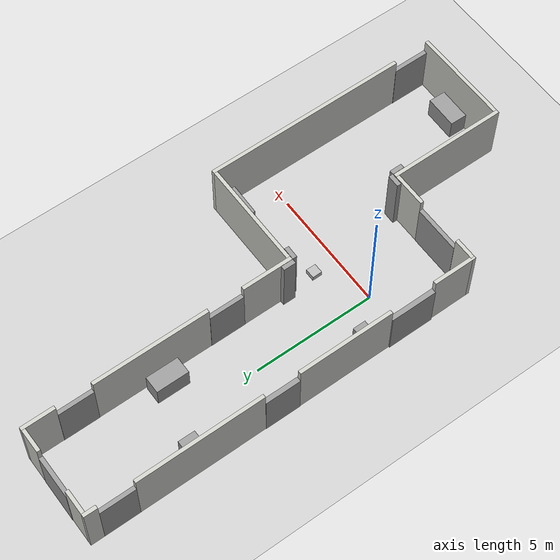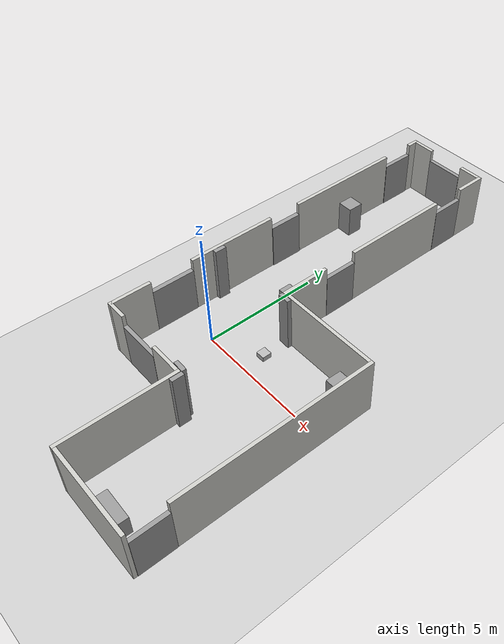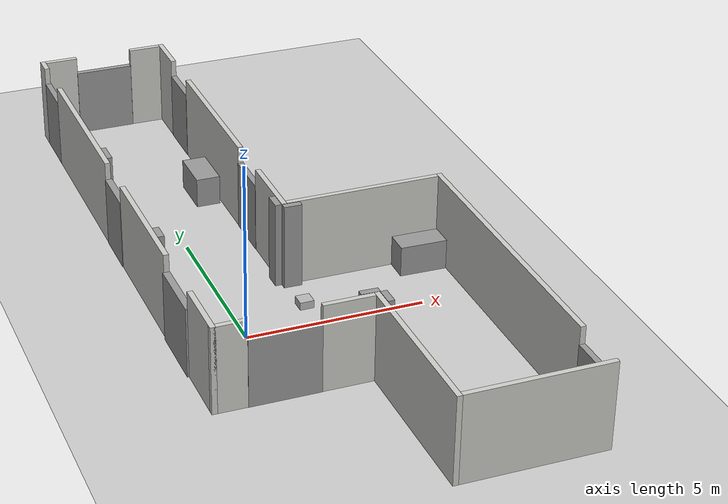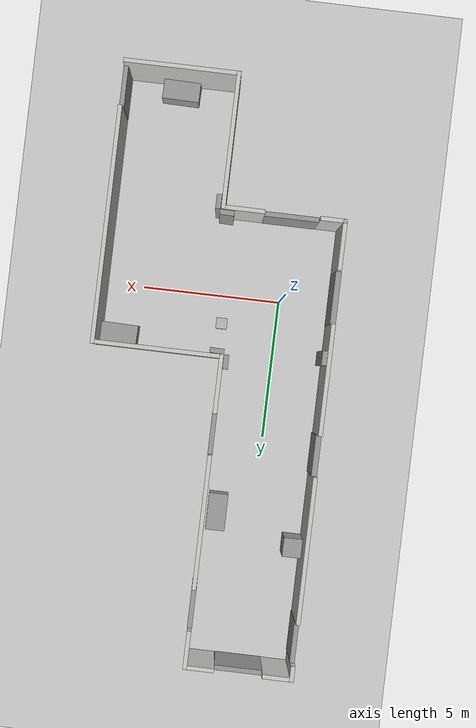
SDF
<sdf version="1.7">
 <world name="default">
  <light name="sun" type="directional">
   <pose>0 0 10 0 -0 0</pose>
   <diffuse>0.8 0.8 0.8 1</diffuse>
   <specular>0.2 0.2 0.2 1</specular>
   <attenuation>
    <range>1000</range>
    <constant>0.9</constant>
    <linear>0.01</linear>
    <quadratic>0.001</quadratic>
   </attenuation>
   <direction>-0.5 0.1 -0.9</direction>
   <spot><inner_angle>0</inner_angle><outer_angle>0</outer_angle><falloff>0</falloff></spot>
  </light>
  <model name="ground_plane">
   <static>1</static>
   <link name="link">
    <collision name="collision">
     <geometry><plane><normal>0 0 1</normal><size>100 100</size></plane></geometry>
     <surface>
      <contact><collide_bitmask>65535</collide_bitmask></contact>
      <friction><ode><mu>100</mu><mu2>50</mu2></ode></friction>
     </surface>
    </collision>
    <visual name="visual">
     <cast_shadows>0</cast_shadows>
     <geometry><plane><normal>0 0 1</normal><size>100 100</size></plane></geometry>
     <material>
      <script><uri>file://media/materials/scripts/gazebo.material</uri><name>Gazebo/Grey</name></script>
     </material>
    </visual>
   </link>
  </model>
  <gravity>0 0 -9.8</gravity>
  <magnetic_field>6e-06 2.3e-05 -4.2e-05</magnetic_field>
  <atmosphere type="adiabatic"/>
  <physics type="ode">
   <max_step_size>0.001</max_step_size>
   <real_time_factor>1</real_time_factor>
   <real_time_update_rate>1000</real_time_update_rate>
  </physics>
  <scene><ambient>0.4 0.4 0.4 1</ambient><background>0.7 0.7 0.7 1</background><shadows>1</shadows></scene>
  <spherical_coordinates>
   <surface_model>EARTH_WGS84</surface_model>
   <latitude_deg>0</latitude_deg>
   <longitude_deg>0</longitude_deg>
   <elevation>0</elevation>
   <heading_deg>0</heading_deg>
  </spherical_coordinates>
  <model name="pasillo_cextension">
   <pose>2.25605 2.7639 0 0 -0 0</pose>
   <link name="Door_1">
    <collision name="Door_1_Collision">
     <geometry><box><size>1.95 0.17 2</size></box></geometry>
     <pose>0 0 1 0 -0 0</pose>
    </collision>
    <visual name="Door_1_Visual">
     <pose>0 0 1 0 -0 0</pose>
     <geometry><box><size>1.95 0.17 2</size></box></geometry>
     <material>
      <script><uri>file://media/materials/scripts/gazebo.material</uri><name>Gazebo/Grey</name></script>
     </material>
    </visual>
    <pose>-2.295 -5.725 0 0 -0 0</pose>
   </link>
   <link name="Door_2">
    <collision name="Door_2_Collision">
     <geometry><box><size>1.9 0.2 2</size></box></geometry>
     <pose>0 0 1 0 -0 0</pose>
    </collision>
    <visual name="Door_2_Visual">
     <pose>0 0 1 0 -0 0</pose>
     <geometry><box><size>1.9 0.2 2</size></box></geometry>
     <material>
      <script><uri>file://media/materials/scripts/gazebo.material</uri><name>Gazebo/Grey</name></script>
     </material>
    </visual>
    <pose>-4.17 -3.055 0 0 -0 -1.57019</pose>
   </link>
   <link name="Door_3">
    <collision name="Door_3_Collision">
     <geometry><box><size>1.45 0.2 2</size></box></geometry>
     <pose>0 0 1 0 -0 0</pose>
    </collision>
    <visual name="Door_3_Visual">
     <pose>0 0 1 0 -0 0</pose>
     <geometry><box><size>1.45 0.2 2</size></box></geometry>
     <material>
      <script><uri>file://media/materials/scripts/gazebo.material</uri><name>Gazebo/Grey</name></script>
     </material>
    </visual>
    <pose>-4.145 2.575 0 0 -0 -1.57264</pose>
   </link>
   <link name="Door_4">
    <collision name="Door_4_Collision">
     <geometry><box><size>1.45 0.17 2</size></box></geometry>
     <pose>0 0 1 0 -0 0</pose>
    </collision>
    <visual name="Door_4_Visual">
     <pose>0 0 1 0 -0 0</pose>
     <geometry><box><size>1.45 0.17 2</size></box></geometry>
     <material>
      <script><uri>file://media/materials/scripts/gazebo.material</uri><name>Gazebo/Grey</name></script>
     </material>
    </visual>
    <pose>-4.145 9.225 0 0 -0 -1.57163</pose>
   </link>
   <link name="Door_5">
    <collision name="Door_5_Collision">
     <geometry><box><size>1.7 0.17 2</size></box></geometry>
     <pose>0 0 1 0 -0 0</pose>
    </collision>
    <visual name="Door_5_Visual">
     <pose>0 0 1 0 -0 0</pose>
     <geometry><box><size>1.7 0.17 2</size></box></geometry>
     <material>
      <script><uri>file://media/materials/scripts/gazebo.material</uri><name>Gazebo/Grey</name></script>
     </material>
    </visual>
    <pose>-2.275 10.425 0 0 -0 3.14085</pose>
   </link>
   <link name="Door_6">
    <collision name="Door_6_Collision">
     <geometry><box><size>1.45 0.17 2</size></box></geometry>
     <pose>0 0 1 0 -0 0</pose>
    </collision>
    <visual name="Door_6_Visual">
     <pose>0 0 1 0 -0 0</pose>
     <geometry><box><size>1.45 0.17 2</size></box></geometry>
     <material>
      <script><uri>file://media/materials/scripts/gazebo.material</uri><name>Gazebo/Grey</name></script>
     </material>
    </visual>
    <pose>-0.395 8.425 0 0 -0 1.57077</pose>
   </link>
   <link name="Door_7">
    <collision name="Door_7_Collision">
     <geometry><box><size>1.45 0.17 2</size></box></geometry>
     <pose>0 0 1 0 -0 0</pose>
    </collision>
    <visual name="Door_7_Visual">
     <pose>0 0 1 0 -0 0</pose>
     <geometry><box><size>1.45 0.17 2</size></box></geometry>
     <material>
      <script><uri>file://media/materials/scripts/gazebo.material</uri><name>Gazebo/Grey</name></script>
     </material>
    </visual>
    <pose>-0.395 2.225 0 0 -0 1.5708</pose>
   </link>
   <link name="Door_8">
    <collision name="Door_8_Collision">
     <geometry><box><size>1.5 0.17 2</size></box></geometry>
     <pose>0 0 1 0 -0 0</pose>
    </collision>
    <visual name="Door_8_Visual">
     <pose>0 0 1 0 -0 0</pose>
     <geometry><box><size>1.5 0.17 2</size></box></geometry>
     <material>
      <script><uri>file://media/materials/scripts/gazebo.material</uri><name>Gazebo/Grey</name></script>
     </material>
    </visual>
    <pose>4.155 -9.595 0 0 -0 1.57287</pose>
   </link>
   <link name="Wall_12">
    <collision name="Wall_12_Collision">
     <geometry><box><size>0.55 0.15 2.5</size></box></geometry>
     <pose>0 0 1.25 0 -0 0</pose>
    </collision>
    <visual name="Wall_12_Visual">
     <pose>0 0 1.25 0 -0 0</pose>
     <geometry><box><size>0.55 0.15 2.5</size></box></geometry>
     <material>
      <script><uri>file://media/materials/scripts/gazebo.material</uri><name>Gazebo/CeilingTiled</name></script>
      <ambient>1 1 1 1</ambient>
     </material>
     <meta><layer>0</layer></meta>
    </visual>
    <pose>-4.155 10.225 0 0 -0 1.5708</pose>
   </link>
   <link name="Wall_14">
    <collision name="Wall_14_Collision">
     <geometry><box><size>0.97 0.15 2.5</size></box></geometry>
     <pose>0 0 1.25 0 -0 0</pose>
    </collision>
    <visual name="Wall_14_Visual">
     <pose>0 0 1.25 0 -0 0</pose>
     <geometry><box><size>0.97 0.15 2.5</size></box></geometry>
     <material>
      <script><uri>file://media/materials/scripts/gazebo.material</uri><name>Gazebo/CeilingTiled</name></script>
      <ambient>1 1 1 1</ambient>
     </material>
     <meta><layer>0</layer></meta>
    </visual>
    <pose>-3.605 10.425 0 0 -0 0</pose>
   </link>
   <link name="Wall_16">
    <collision name="Wall_16_Collision">
     <geometry><box><size>0.95 0.15 2.5</size></box></geometry>
     <pose>0 0 1.25 0 -0 0</pose>
    </collision>
    <visual name="Wall_16_Visual">
     <pose>0 0 1.25 0 -0 0</pose>
     <geometry><box><size>0.95 0.15 2.5</size></box></geometry>
     <material>
      <script><uri>file://media/materials/scripts/gazebo.material</uri><name>Gazebo/CeilingTiled</name></script>
      <ambient>1 1 1 1</ambient>
     </material>
     <meta><layer>0</layer></meta>
    </visual>
    <pose>-0.945 10.425 0 0 -0 0</pose>
   </link>
   <link name="Wall_18">
    <collision name="Wall_18_Collision">
     <geometry><box><size>1.35 0.15 2.5</size></box></geometry>
     <pose>0 0 1.25 0 -0 0</pose>
    </collision>
    <visual name="Wall_18_Visual">
     <pose>0 0 1.25 0 -0 0</pose>
     <geometry><box><size>1.35 0.15 2.5</size></box></geometry>
     <material>
      <script><uri>file://media/materials/scripts/gazebo.material</uri><name>Gazebo/CeilingTiled</name></script>
      <ambient>1 1 1 1</ambient>
     </material>
     <meta><layer>0</layer></meta>
    </visual>
    <pose>-0.395 9.825 0 0 -0 -1.5708</pose>
   </link>
   <link name="Wall_20">
    <collision name="Wall_20_Collision">
     <geometry><box><size>4.75 0.15 2.5</size></box></geometry>
     <pose>0 0 1.25 0 -0 0</pose>
    </collision>
    <visual name="Wall_20_Visual">
     <pose>0 0 1.25 0 -0 0</pose>
     <geometry><box><size>4.75 0.15 2.5</size></box></geometry>
     <material>
      <script><uri>file://media/materials/scripts/gazebo.material</uri><name>Gazebo/CeilingTiled</name></script>
      <ambient>1 1 1 1</ambient>
     </material>
     <meta><layer>0</layer></meta>
    </visual>
    <pose>-0.395 5.325 0 0 -0 -1.5708</pose>
   </link>
   <link name="Wall_22">
    <collision name="Wall_22_Collision">
     <geometry><box><size>2.1 0.15 2.5</size></box></geometry>
     <pose>0 0 1.25 0 -0 0</pose>
    </collision>
    <visual name="Wall_22_Visual">
     <pose>0 0 1.25 0 -0 0</pose>
     <geometry><box><size>2.1 0.15 2.5</size></box></geometry>
     <material>
      <script><uri>file://media/materials/scripts/gazebo.material</uri><name>Gazebo/CeilingTiled</name></script>
      <ambient>1 1 1 1</ambient>
     </material>
     <meta><layer>0</layer></meta>
    </visual>
    <pose>-0.395 0.45 0 0 -0 -1.5708</pose>
   </link>
   <link name="Wall_24">
    <collision name="Wall_24_Collision">
     <geometry><box><size>4.4 0.15 2.5</size></box></geometry>
     <pose>0 0 1.25 0 -0 0</pose>
    </collision>
    <visual name="Wall_24_Visual">
     <pose>0 0 1.25 0 -0 0</pose>
     <geometry><box><size>4.4 0.15 2.5</size></box></geometry>
     <material>
      <script><uri>file://media/materials/scripts/gazebo.material</uri><name>Gazebo/CeilingTiled</name></script>
      <ambient>1 1 1 1</ambient>
     </material>
     <meta><layer>0</layer></meta>
    </visual>
    <pose>1.88 -0.525 0 0 -0 0</pose>
   </link>
   <link name="Wall_26">
    <collision name="Wall_26_Collision">
     <geometry><box><size>8.4 0.15 2.5</size></box></geometry>
     <pose>0 0 1.25 0 -0 0</pose>
    </collision>
    <visual name="Wall_26_Visual">
     <pose>0 0 1.25 0 -0 0</pose>
     <geometry><box><size>8.4 0.15 2.5</size></box></geometry>
     <material>
      <script><uri>file://media/materials/scripts/gazebo.material</uri><name>Gazebo/CeilingTiled</name></script>
      <ambient>1 1 1 1</ambient>
     </material>
     <meta><layer>0</layer></meta>
    </visual>
    <pose>4.155 -4.65 0 0 -0 -1.5708</pose>
   </link>
   <link name="Wall_28">
    <collision name="Wall_28_Collision">
     <geometry><box><size>4 0.15 2.5</size></box></geometry>
     <pose>0 0 1.25 0 -0 0</pose>
    </collision>
    <visual name="Wall_28_Visual">
     <pose>0 0 1.25 0 -0 0</pose>
     <geometry><box><size>4 0.15 2.5</size></box></geometry>
     <material>
      <script><uri>file://media/materials/scripts/gazebo.material</uri><name>Gazebo/CeilingTiled</name></script>
      <ambient>1 1 1 1</ambient>
     </material>
     <meta><layer>0</layer></meta>
    </visual>
    <pose>2.23 -10.425 0 0 -0 3.14159</pose>
   </link>
   <link name="Wall_3">
    <collision name="Wall_3_Collision">
     <geometry><box><size>0.95 0.15 2.5</size></box></geometry>
     <pose>0 0 1.25 0 -0 0</pose>
    </collision>
    <visual name="Wall_3_Visual">
     <pose>0 0 1.25 0 -0 0</pose>
     <geometry><box><size>0.95 0.15 2.5</size></box></geometry>
     <material>
      <script><uri>file://media/materials/scripts/gazebo.material</uri><name>Gazebo/CeilingTiled</name></script>
      <ambient>1 1 1 1</ambient>
     </material>
     <meta><layer>0</layer></meta>
    </visual>
    <pose>-3.745 -5.725 0 0 -0 3.14159</pose>
   </link>
   <link name="Wall_30">
    <collision name="Wall_30_Collision">
     <geometry><box><size>4.85 0.15 2.5</size></box></geometry>
     <pose>0 0 1.25 0 -0 0</pose>
    </collision>
    <visual name="Wall_30_Visual">
     <pose>0 0 1.25 0 -0 0</pose>
     <geometry><box><size>4.85 0.15 2.5</size></box></geometry>
     <material>
      <script><uri>file://media/materials/scripts/gazebo.material</uri><name>Gazebo/CeilingTiled</name></script>
      <ambient>1 1 1 1</ambient>
     </material>
     <meta><layer>0</layer></meta>
    </visual>
    <pose>0.155 -8.075 0 0 -0 1.5708</pose>
   </link>
   <link name="Wall_32">
    <collision name="Wall_32_Collision">
     <geometry><box><size>1.4 0.15 2.5</size></box></geometry>
     <pose>0 0 1.25 0 -0 0</pose>
    </collision>
    <visual name="Wall_32_Visual">
     <pose>0 0 1.25 0 -0 0</pose>
     <geometry><box><size>1.4 0.15 2.5</size></box></geometry>
     <material>
      <script><uri>file://media/materials/scripts/gazebo.material</uri><name>Gazebo/CeilingTiled</name></script>
      <ambient>1 1 1 1</ambient>
     </material>
     <meta><layer>0</layer></meta>
    </visual>
    <pose>-0.62 -5.725 0 0 -0 0</pose>
   </link>
   <link name="Wall_5">
    <collision name="Wall_5_Collision">
     <geometry><box><size>1.8 0.15 2.5</size></box></geometry>
     <pose>0 0 1.25 0 -0 0</pose>
    </collision>
    <visual name="Wall_5_Visual">
     <pose>0 0 1.25 0 -0 0</pose>
     <geometry><box><size>1.8 0.15 2.5</size></box></geometry>
     <material>
      <script><uri>file://media/materials/scripts/gazebo.material</uri><name>Gazebo/CeilingTiled</name></script>
      <ambient>1 1 1 1</ambient>
     </material>
     <meta><layer>0</layer></meta>
    </visual>
    <pose>-4.145 -4.9 0 0 -0 1.5708</pose>
   </link>
   <link name="Wall_7">
    <collision name="Wall_7_Collision">
     <geometry><box><size>3.95 0.15 2.5</size></box></geometry>
     <pose>0 0 1.25 0 -0 0</pose>
    </collision>
    <visual name="Wall_7_Visual">
     <pose>0 0 1.25 0 -0 0</pose>
     <geometry><box><size>3.95 0.15 2.5</size></box></geometry>
     <material>
      <script><uri>file://media/materials/scripts/gazebo.material</uri><name>Gazebo/CeilingTiled</name></script>
      <ambient>1 1 1 1</ambient>
     </material>
     <meta><layer>0</layer></meta>
    </visual>
    <pose>-4.155 -0.125 0 0 -0 1.5708</pose>
   </link>
   <link name="Wall_9">
    <collision name="Wall_9_Collision">
     <geometry><box><size>5.2 0.15 2.5</size></box></geometry>
     <pose>0 0 1.25 0 -0 0</pose>
    </collision>
    <visual name="Wall_9_Visual">
     <pose>0 0 1.25 0 -0 0</pose>
     <geometry><box><size>5.2 0.15 2.5</size></box></geometry>
     <material>
      <script><uri>file://media/materials/scripts/gazebo.material</uri><name>Gazebo/CeilingTiled</name></script>
      <ambient>1 1 1 1</ambient>
     </material>
     <meta><layer>0</layer></meta>
    </visual>
    <pose>-4.155 5.9 0 0 -0 1.5708</pose>
   </link>
   <static>1</static>
  </model>
  <model name="Objeto1">
   <link name="link_0">
    <inertial>
     <mass>0.815324</mass>
     <inertia>
      <ixx>0.173743</ixx>
      <ixy>0</ixy>
      <ixz>0</ixz>
      <iyy>0.0849664</iyy>
      <iyz>0</iyz>
      <izz>0.154612</izz>
     </inertia>
    </inertial>
    <visual name="visual">
     <geometry><box><size>0.696049 1.33832 0.875248</size></box></geometry>
     <material>
      <lighting>1</lighting>
      <script><uri>file://media/materials/scripts/gazebo.material</uri><name>Gazebo/Grey</name></script>
      <shader type="pixel"><normal_map>__default__</normal_map></shader>
      <ambient>0.3 0.3 0.3 1</ambient>
      <diffuse>0.7 0.7 0.7 1</diffuse>
      <specular>0.01 0.01 0.01 1</specular>
      <emissive>0 0 0 1</emissive>
     </material>
    </visual>
    <collision name="collision">
     <geometry><box><size>0.696049 1.33832 0.875248</size></box></geometry>
     <surface>
      <friction>
       <ode><mu>1</mu><mu2>1</mu2><fdir1>0 0 0</fdir1><slip1>0</slip1><slip2>0</slip2></ode>
       <torsional>
        <coefficient>1</coefficient>
        <patch_radius>0</patch_radius>
        <surface_radius>0</surface_radius>
        <use_patch_radius>1</use_patch_radius>
        <ode><slip>0</slip></ode>
       </torsional>
      </friction>
      <bounce><restitution_coefficient>0</restitution_coefficient><threshold>1e+06</threshold></bounce>
      <contact>
       <collide_without_contact>0</collide_without_contact>
       <collide_without_contact_bitmask>1</collide_without_contact_bitmask>
       <collide_bitmask>1</collide_bitmask>
       <ode>
        <soft_cfm>0</soft_cfm>
        <soft_erp>0.2</soft_erp>
        <kp>1e+13</kp>
        <kd>1</kd>
        <max_vel>0.01</max_vel>
        <min_depth>0</min_depth>
       </ode>
       <bullet>
        <split_impulse>1</split_impulse>
        <split_impulse_penetration_threshold>-0.01</split_impulse_penetration_threshold>
        <soft_cfm>0</soft_cfm>
        <soft_erp>0.2</soft_erp>
        <kp>1e+13</kp>
        <kd>1</kd>
       </bullet>
      </contact>
     </surface>
    </collision>
   </link>
   <static>0</static>
   <pose>1.36731 7.8546 0.437624 0 -0 0</pose>
  </model>
  <model name="Objeto2">
   <link name="link_1">
    <inertial>
     <mass>0.650004</mass>
     <inertia>
      <ixx>0.133154</ixx>
      <ixy>0</ixy>
      <ixz>0</ixz>
      <iyy>0.132421</iyy>
      <iyz>0</iyz>
      <izz>0.0499143</izz>
     </inertia>
    </inertial>
    <visual name="visual">
     <geometry><box><size>0.673781 0.683746 1.41092</size></box></geometry>
     <material>
      <lighting>1</lighting>
      <script><uri>file://media/materials/scripts/gazebo.material</uri><name>Gazebo/Grey</name></script>
      <shader type="pixel"><normal_map>__default__</normal_map></shader>
     </material>
    </visual>
    <collision name="collision">
     <geometry><box><size>0.673781 0.683746 1.41092</size></box></geometry>
     <surface>
      <friction>
       <ode><mu>1</mu><mu2>1</mu2><fdir1>0 0 0</fdir1><slip1>0</slip1><slip2>0</slip2></ode>
       <torsional>
        <coefficient>1</coefficient>
        <patch_radius>0</patch_radius>
        <surface_radius>0</surface_radius>
        <use_patch_radius>1</use_patch_radius>
        <ode><slip>0</slip></ode>
       </torsional>
      </friction>
      <bounce><restitution_coefficient>0</restitution_coefficient><threshold>1e+06</threshold></bounce>
      <contact>
       <collide_without_contact>0</collide_without_contact>
       <collide_without_contact_bitmask>1</collide_without_contact_bitmask>
       <collide_bitmask>1</collide_bitmask>
       <ode>
        <soft_cfm>0</soft_cfm>
        <soft_erp>0.2</soft_erp>
        <kp>1e+13</kp>
        <kd>1</kd>
        <max_vel>0.01</max_vel>
        <min_depth>0</min_depth>
       </ode>
       <bullet>
        <split_impulse>1</split_impulse>
        <split_impulse_penetration_threshold>-0.01</split_impulse_penetration_threshold>
        <soft_cfm>0</soft_cfm>
        <soft_erp>0.2</soft_erp>
        <kp>1e+13</kp>
        <kd>1</kd>
       </bullet>
      </contact>
     </surface>
    </collision>
   </link>
   <static>0</static>
   <pose>-1.47542 8.76032 0.70546 0 -0 2e-06</pose>
  </model>
  <model name="Objeto1_0">
   <link name="link_0">
    <inertial>
     <mass>0.815324</mass>
     <inertia>
      <ixx>0.173743</ixx>
      <ixy>0</ixy>
      <ixz>0</ixz>
      <iyy>0.0849664</iyy>
      <iyz>0</iyz>
      <izz>0.154612</izz>
     </inertia>
    </inertial>
    <visual name="visual">
     <geometry><box><size>0.696049 1.33832 0.875248</size></box></geometry>
     <material>
      <lighting>1</lighting>
      <script><uri>file://media/materials/scripts/gazebo.material</uri><name>Gazebo/Grey</name></script>
      <shader type="pixel"><normal_map>__default__</normal_map></shader>
      <ambient>0.3 0.3 0.3 1</ambient>
      <diffuse>0.7 0.7 0.7 1</diffuse>
      <specular>0.01 0.01 0.01 1</specular>
      <emissive>0 0 0 1</emissive>
     </material>
    </visual>
    <collision name="collision">
     <geometry><box><size>0.696049 1.33832 0.875248</size></box></geometry>
     <surface>
      <friction>
       <ode><mu>1</mu><mu2>1</mu2><fdir1>0 0 0</fdir1><slip1>0</slip1><slip2>0</slip2></ode>
       <torsional>
        <coefficient>1</coefficient>
        <patch_radius>0</patch_radius>
        <surface_radius>0</surface_radius>
        <use_patch_radius>1</use_patch_radius>
        <ode><slip>0</slip></ode>
       </torsional>
      </friction>
      <bounce><restitution_coefficient>0</restitution_coefficient><threshold>1e+06</threshold></bounce>
      <contact>
       <collide_without_contact>0</collide_without_contact>
       <collide_without_contact_bitmask>1</collide_without_contact_bitmask>
       <collide_bitmask>1</collide_bitmask>
       <ode>
        <soft_cfm>0</soft_cfm>
        <soft_erp>0.2</soft_erp>
        <kp>1e+13</kp>
        <kd>1</kd>
        <max_vel>0.01</max_vel>
        <min_depth>0</min_depth>
       </ode>
       <bullet>
        <split_impulse>1</split_impulse>
        <split_impulse_penetration_threshold>-0.01</split_impulse_penetration_threshold>
        <soft_cfm>0</soft_cfm>
        <soft_erp>0.2</soft_erp>
        <kp>1e+13</kp>
        <kd>1</kd>
       </bullet>
      </contact>
     </surface>
    </collision>
   </link>
   <static>0</static>
   <pose>4.42943 -7.20729 0.437624 0 -0 1.55008</pose>
  </model>
  <model name="Objeto3">
   <link name="link_3">
    <inertial>
     <mass>0.230988</mass>
     <inertia>
      <ixx>0.123228</ixx>
      <ixy>0</ixy>
      <ixz>0</ixz>
      <iyy>0.118879</iyy>
      <iyz>0</iyz>
      <izz>0.00563731</izz>
     </inertia>
    </inertial>
    <pose>-4e-06 -5e-06 3e-06 0 -0 0</pose>
    <visual name="visual">
     <geometry><box><size>0.182906 0.509321 2.47839</size></box></geometry>
     <material>
      <lighting>1</lighting>
      <script><uri>file://media/materials/scripts/gazebo.material</uri><name>Gazebo/Grey</name></script>
      <shader type="pixel"><normal_map>__default__</normal_map></shader>
      <ambient>1 1 1 0</ambient>
      <diffuse>0.7 0.7 0.7 1</diffuse>
      <specular>0.01 0.01 0.01 1</specular>
      <emissive>0 0 0 1</emissive>
     </material>
    </visual>
    <collision name="collision">
     <geometry><box><size>0.182906 0.509321 2.47839</size></box></geometry>
     <surface>
      <friction>
       <ode><mu>1</mu><mu2>1</mu2><fdir1>0 0 0</fdir1><slip1>0</slip1><slip2>0</slip2></ode>
       <torsional>
        <coefficient>1</coefficient>
        <patch_radius>0</patch_radius>
        <surface_radius>0</surface_radius>
        <use_patch_radius>1</use_patch_radius>
        <ode><slip>0</slip></ode>
       </torsional>
      </friction>
      <bounce><restitution_coefficient>0</restitution_coefficient><threshold>1e+06</threshold></bounce>
      <contact>
       <collide_without_contact>0</collide_without_contact>
       <collide_without_contact_bitmask>1</collide_without_contact_bitmask>
       <collide_bitmask>1</collide_bitmask>
       <ode>
        <soft_cfm>0</soft_cfm>
        <soft_erp>0.2</soft_erp>
        <kp>1e+13</kp>
        <kd>1</kd>
        <max_vel>0.01</max_vel>
        <min_depth>0</min_depth>
       </ode>
       <bullet>
        <split_impulse>1</split_impulse>
        <split_impulse_penetration_threshold>-0.01</split_impulse_penetration_threshold>
        <soft_cfm>0</soft_cfm>
        <soft_erp>0.2</soft_erp>
        <kp>1e+13</kp>
        <kd>1</kd>
       </bullet>
      </contact>
     </surface>
    </collision>
   </link>
   <static>0</static>
   <pose>-1.73014 1.88172 1.25385 0 -0 0</pose>
  </model>
  <model name="Objeto3_clone">
   <link name="link_3">
    <inertial>
     <mass>0.230988</mass>
     <inertia>
      <ixx>0.123228</ixx>
      <ixy>0</ixy>
      <ixz>0</ixz>
      <iyy>0.118879</iyy>
      <iyz>0</iyz>
      <izz>0.00563731</izz>
     </inertia>
    </inertial>
    <pose>-4e-06 -5e-06 3e-06 0 -0 0</pose>
    <visual name="visual">
     <geometry><box><size>0.182906 0.509321 2.47839</size></box></geometry>
     <material>
      <lighting>1</lighting>
      <script><uri>file://media/materials/scripts/gazebo.material</uri><name>Gazebo/Grey</name></script>
      <shader type="pixel"><normal_map>__default__</normal_map></shader>
      <ambient>1 1 1 0</ambient>
      <diffuse>0.7 0.7 0.7 1</diffuse>
      <specular>0.01 0.01 0.01 1</specular>
      <emissive>0 0 0 1</emissive>
     </material>
    </visual>
    <collision name="collision">
     <geometry><box><size>0.182906 0.509321 2.47839</size></box></geometry>
     <surface>
      <friction>
       <ode><mu>1</mu><mu2>1</mu2><fdir1>0 0 0</fdir1><slip1>0</slip1><slip2>0</slip2></ode>
       <torsional>
        <coefficient>1</coefficient>
        <patch_radius>0</patch_radius>
        <surface_radius>0</surface_radius>
        <use_patch_radius>1</use_patch_radius>
        <ode><slip>0</slip></ode>
       </torsional>
      </friction>
      <bounce><restitution_coefficient>0</restitution_coefficient><threshold>1e+06</threshold></bounce>
      <contact>
       <collide_without_contact>0</collide_without_contact>
       <collide_without_contact_bitmask>1</collide_without_contact_bitmask>
       <collide_bitmask>1</collide_bitmask>
       <ode>
        <soft_cfm>0</soft_cfm>
        <soft_erp>0.2</soft_erp>
        <kp>1e+13</kp>
        <kd>1</kd>
        <max_vel>0.01</max_vel>
        <min_depth>0</min_depth>
       </ode>
       <bullet>
        <split_impulse>1</split_impulse>
        <split_impulse_penetration_threshold>-0.01</split_impulse_penetration_threshold>
        <soft_cfm>0</soft_cfm>
        <soft_erp>0.2</soft_erp>
        <kp>1e+13</kp>
        <kd>1</kd>
       </bullet>
      </contact>
     </surface>
    </collision>
   </link>
   <static>0</static>
   <pose>1.69016 2.41494 1.25385 0 -0 0</pose>
  </model>
  <model name="Objeto3_clone_0">
   <link name="link_3">
    <inertial>
     <mass>0.230988</mass>
     <inertia>
      <ixx>0.123228</ixx>
      <ixy>0</ixy>
      <ixz>0</ixz>
      <iyy>0.118879</iyy>
      <iyz>0</iyz>
      <izz>0.00563731</izz>
     </inertia>
    </inertial>
    <pose>-4e-06 -5e-06 3e-06 0 -0 0</pose>
    <visual name="visual">
     <geometry><box><size>0.182906 0.509321 2.47839</size></box></geometry>
     <material>
      <lighting>1</lighting>
      <script><uri>file://media/materials/scripts/gazebo.material</uri><name>Gazebo/Grey</name></script>
      <shader type="pixel"><normal_map>__default__</normal_map></shader>
      <ambient>1 1 1 0</ambient>
      <diffuse>0.7 0.7 0.7 1</diffuse>
      <specular>0.01 0.01 0.01 1</specular>
      <emissive>0 0 0 1</emissive>
     </material>
    </visual>
    <collision name="collision">
     <geometry><box><size>0.182906 0.509321 2.47839</size></box></geometry>
     <surface>
      <friction>
       <ode><mu>1</mu><mu2>1</mu2><fdir1>0 0 0</fdir1><slip1>0</slip1><slip2>0</slip2></ode>
       <torsional>
        <coefficient>1</coefficient>
        <patch_radius>0</patch_radius>
        <surface_radius>0</surface_radius>
        <use_patch_radius>1</use_patch_radius>
        <ode><slip>0</slip></ode>
       </torsional>
      </friction>
      <bounce><restitution_coefficient>0</restitution_coefficient><threshold>1e+06</threshold></bounce>
      <contact>
       <collide_without_contact>0</collide_without_contact>
       <collide_without_contact_bitmask>1</collide_without_contact_bitmask>
       <collide_bitmask>1</collide_bitmask>
       <ode>
        <soft_cfm>0</soft_cfm>
        <soft_erp>0.2</soft_erp>
        <kp>1e+13</kp>
        <kd>1</kd>
        <max_vel>0.01</max_vel>
        <min_depth>0</min_depth>
       </ode>
       <bullet>
        <split_impulse>1</split_impulse>
        <split_impulse_penetration_threshold>-0.01</split_impulse_penetration_threshold>
        <soft_cfm>0</soft_cfm>
        <soft_erp>0.2</soft_erp>
        <kp>1e+13</kp>
        <kd>1</kd>
       </bullet>
      </contact>
     </surface>
    </collision>
   </link>
   <static>0</static>
   <pose>2.04091 2.06124 1.25385 0 -0 1.54561</pose>
  </model>
  <model name="Objeto3_clone_1">
   <link name="link_3">
    <inertial>
     <mass>0.230988</mass>
     <inertia>
      <ixx>0.123228</ixx>
      <ixy>0</ixy>
      <ixz>0</ixz>
      <iyy>0.118879</iyy>
      <iyz>0</iyz>
      <izz>0.00563731</izz>
     </inertia>
    </inertial>
    <pose>-4e-06 -5e-06 3e-06 0 -0 0</pose>
    <visual name="visual">
     <geometry><box><size>0.182906 0.509321 2.47839</size></box></geometry>
     <material>
      <lighting>1</lighting>
      <script><uri>file://media/materials/scripts/gazebo.material</uri><name>Gazebo/Grey</name></script>
      <shader type="pixel"><normal_map>__default__</normal_map></shader>
      <ambient>1 1 1 0</ambient>
      <diffuse>0.7 0.7 0.7 1</diffuse>
      <specular>0.01 0.01 0.01 1</specular>
      <emissive>0 0 0 1</emissive>
     </material>
    </visual>
    <collision name="collision">
     <geometry><box><size>0.182906 0.509321 2.47839</size></box></geometry>
     <surface>
      <friction>
       <ode><mu>1</mu><mu2>1</mu2><fdir1>0 0 0</fdir1><slip1>0</slip1><slip2>0</slip2></ode>
       <torsional>
        <coefficient>1</coefficient>
        <patch_radius>0</patch_radius>
        <surface_radius>0</surface_radius>
        <use_patch_radius>1</use_patch_radius>
        <ode><slip>0</slip></ode>
       </torsional>
      </friction>
      <bounce><restitution_coefficient>0</restitution_coefficient><threshold>1e+06</threshold></bounce>
      <contact>
       <collide_without_contact>0</collide_without_contact>
       <collide_without_contact_bitmask>1</collide_without_contact_bitmask>
       <collide_bitmask>1</collide_bitmask>
       <ode>
        <soft_cfm>0</soft_cfm>
        <soft_erp>0.2</soft_erp>
        <kp>1e+13</kp>
        <kd>1</kd>
        <max_vel>0.01</max_vel>
        <min_depth>0</min_depth>
       </ode>
       <bullet>
        <split_impulse>1</split_impulse>
        <split_impulse_penetration_threshold>-0.01</split_impulse_penetration_threshold>
        <soft_cfm>0</soft_cfm>
        <soft_erp>0.2</soft_erp>
        <kp>1e+13</kp>
        <kd>1</kd>
       </bullet>
      </contact>
     </surface>
    </collision>
   </link>
   <static>0</static>
   <pose>2.58929 -3.12968 1.25385 0 -0 0</pose>
  </model>
  <model name="Objeto3_clone_3">
   <link name="link_3">
    <inertial>
     <mass>0.230988</mass>
     <inertia>
      <ixx>0.123228</ixx>
      <ixy>0</ixy>
      <ixz>0</ixz>
      <iyy>0.118879</iyy>
      <iyz>0</iyz>
      <izz>0.00563731</izz>
     </inertia>
    </inertial>
    <pose>-4e-06 -5e-06 3e-06 0 -0 0</pose>
    <visual name="visual">
     <geometry><box><size>0.182906 0.509321 2.47839</size></box></geometry>
     <material>
      <lighting>1</lighting>
      <script><uri>file://media/materials/scripts/gazebo.material</uri><name>Gazebo/Grey</name></script>
      <shader type="pixel"><normal_map>__default__</normal_map></shader>
      <ambient>1 1 1 0</ambient>
      <diffuse>0.7 0.7 0.7 1</diffuse>
      <specular>0.01 0.01 0.01 1</specular>
      <emissive>0 0 0 1</emissive>
     </material>
    </visual>
    <collision name="collision">
     <geometry><box><size>0.182906 0.509321 2.47839</size></box></geometry>
     <surface>
      <friction>
       <ode><mu>1</mu><mu2>1</mu2><fdir1>0 0 0</fdir1><slip1>0</slip1><slip2>0</slip2></ode>
       <torsional>
        <coefficient>1</coefficient>
        <patch_radius>0</patch_radius>
        <surface_radius>0</surface_radius>
        <use_patch_radius>1</use_patch_radius>
        <ode><slip>0</slip></ode>
       </torsional>
      </friction>
      <bounce><restitution_coefficient>0</restitution_coefficient><threshold>1e+06</threshold></bounce>
      <contact>
       <collide_without_contact>0</collide_without_contact>
       <collide_without_contact_bitmask>1</collide_without_contact_bitmask>
       <collide_bitmask>1</collide_bitmask>
       <ode>
        <soft_cfm>0</soft_cfm>
        <soft_erp>0.2</soft_erp>
        <kp>1e+13</kp>
        <kd>1</kd>
        <max_vel>0.01</max_vel>
        <min_depth>0</min_depth>
       </ode>
       <bullet>
        <split_impulse>1</split_impulse>
        <split_impulse_penetration_threshold>-0.01</split_impulse_penetration_threshold>
        <soft_cfm>0</soft_cfm>
        <soft_erp>0.2</soft_erp>
        <kp>1e+13</kp>
        <kd>1</kd>
       </bullet>
      </contact>
     </surface>
    </collision>
   </link>
   <static>0</static>
   <pose>2.26005 -2.77515 1.25385 0 -0 1.54561</pose>
  </model>
  <model name="Objeto1_0_clone">
   <link name="link_0">
    <inertial>
     <mass>0.815324</mass>
     <inertia>
      <ixx>0.173743</ixx>
      <ixy>0</ixy>
      <ixz>0</ixz>
      <iyy>0.0849664</iyy>
      <iyz>0</iyz>
      <izz>0.154612</izz>
     </inertia>
    </inertial>
    <visual name="visual">
     <geometry><box><size>0.696049 1.33832 0.875248</size></box></geometry>
     <material>
      <lighting>1</lighting>
      <script><uri>file://media/materials/scripts/gazebo.material</uri><name>Gazebo/Grey</name></script>
      <shader type="pixel"><normal_map>__default__</normal_map></shader>
      <ambient>0.3 0.3 0.3 1</ambient>
      <diffuse>0.7 0.7 0.7 1</diffuse>
      <specular>0.01 0.01 0.01 1</specular>
      <emissive>0 0 0 1</emissive>
     </material>
    </visual>
    <collision name="collision">
     <geometry><box><size>0.696049 1.33832 0.875248</size></box></geometry>
     <surface>
      <friction>
       <ode><mu>1</mu><mu2>1</mu2><fdir1>0 0 0</fdir1><slip1>0</slip1><slip2>0</slip2></ode>
       <torsional>
        <coefficient>1</coefficient>
        <patch_radius>0</patch_radius>
        <surface_radius>0</surface_radius>
        <use_patch_radius>1</use_patch_radius>
        <ode><slip>0</slip></ode>
       </torsional>
      </friction>
      <bounce><restitution_coefficient>0</restitution_coefficient><threshold>1e+06</threshold></bounce>
      <contact>
       <collide_without_contact>0</collide_without_contact>
       <collide_without_contact_bitmask>1</collide_without_contact_bitmask>
       <collide_bitmask>1</collide_bitmask>
       <ode>
        <soft_cfm>0</soft_cfm>
        <soft_erp>0.2</soft_erp>
        <kp>1e+13</kp>
        <kd>1</kd>
        <max_vel>0.01</max_vel>
        <min_depth>0</min_depth>
       </ode>
       <bullet>
        <split_impulse>1</split_impulse>
        <split_impulse_penetration_threshold>-0.01</split_impulse_penetration_threshold>
        <soft_cfm>0</soft_cfm>
        <soft_erp>0.2</soft_erp>
        <kp>1e+13</kp>
        <kd>1</kd>
       </bullet>
      </contact>
     </surface>
    </collision>
   </link>
   <static>0</static>
   <pose>5.66874 1.8111 0.437624 0 -0 1.55008</pose>
  </model>
  <model name="box1">
   <pose>2 1 0 0 0 0</pose>
   <link name="link">
    <collision name="collision"><geometry><box><size>0.4 0.4 0.4</size></box></geometry></collision>
    <visual name="visual"><geometry><box><size>0.4 0.4 0.4</size></box></geometry></visual>
   </link>
   <plugin name="push_animate_1" filename="libanimated_box_1.so"/>
  </model>
 </world>
</sdf>
